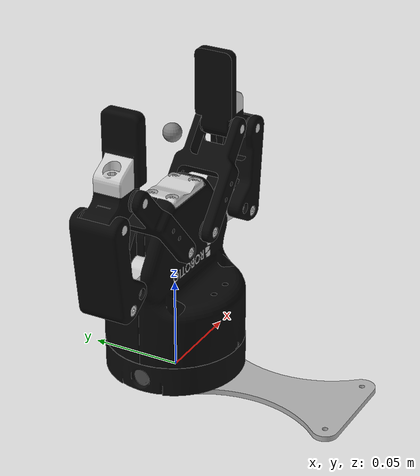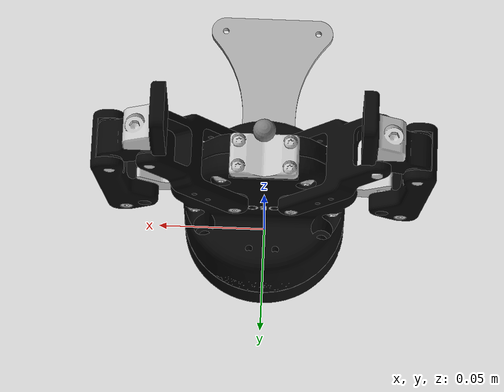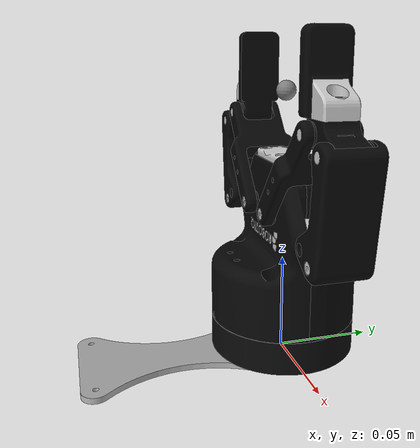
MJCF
<!--
  Robotiq 85 二指夹爪 MJCF
  包含 1 个驱动关节: robotiq_85_left_knuckle_joint (position actuator)
  右侧通过 tendon coupling 联动
-->
<mujoco model="robotiq_85_gripper">
  <compiler angle="radian" meshdir="meshes" autolimits="true"/>

  <default>
    <default class="gripper">
      <default class="visual">
        <geom contype="0" conaffinity="0" group="2"/>
      </default>
      <default class="collision">
        <geom contype="1" conaffinity="1" group="3" condim="4"/>
      </default>
    </default>
  </default>

  <asset>
    <!-- Shelf / adapter -->
    <mesh name="MESH_RealSense_D435_Shelf_d359ca29" file="RealSense_D435_Shelf_d359ca29.STL"/>
    <mesh name="MESH_ur_to_robotiq_adapter_c1f8affd" file="ur_to_robotiq_adapter_c1f8affd.stl"/>
    <mesh name="MESH_ur_to_robotiq_adapter_e07b68cf_0" file="ur_to_robotiq_adapter_e07b68cf_0.obj"/>
    <mesh name="MESH_ur_to_robotiq_adapter_e07b68cf_1" file="ur_to_robotiq_adapter_e07b68cf_1.obj"/>
    <!-- Base -->
    <mesh name="MESH_robotiq_base_e14b1363" file="robotiq_base_e14b1363.stl"/>
    <mesh name="MESH_robotiq_base_ba4c22e7_0" file="robotiq_base_ba4c22e7_0.obj"/>
    <mesh name="MESH_robotiq_base_ba4c22e7_1" file="robotiq_base_ba4c22e7_1.obj"/>
    <!-- Left finger -->
    <mesh name="MESH_left_knuckle_51d3a21e" file="left_knuckle_51d3a21e.stl"/>
    <mesh name="MESH_left_knuckle_ac6d7519_0" file="left_knuckle_ac6d7519_0.obj"/>
    <mesh name="MESH_left_finger_1b48fede" file="left_finger_1b48fede.stl"/>
    <mesh name="MESH_left_finger_e1ea88f9_0" file="left_finger_e1ea88f9_0.obj"/>
    <mesh name="MESH_left_finger_e1ea88f9_1" file="left_finger_e1ea88f9_1.obj"/>
    <mesh name="MESH_left_finger_tip_c9609174" file="left_finger_tip_c9609174.stl"/>
    <mesh name="MESH_left_finger_tip_4c918411_0" file="left_finger_tip_4c918411_0.obj"/>
    <mesh name="MESH_left_finger_tip_4c918411_1" file="left_finger_tip_4c918411_1.obj"/>
    <!-- Right finger -->
    <mesh name="MESH_right_knuckle_8dc62fad" file="right_knuckle_8dc62fad.stl"/>
    <mesh name="MESH_right_knuckle_922d025b_0" file="right_knuckle_922d025b_0.obj"/>
    <mesh name="MESH_right_finger_df3e86a5" file="right_finger_df3e86a5.stl"/>
    <mesh name="MESH_right_finger_12094dbb_0" file="right_finger_12094dbb_0.obj"/>
    <mesh name="MESH_right_finger_12094dbb_1" file="right_finger_12094dbb_1.obj"/>
    <mesh name="MESH_right_finger_tip_8abbbc6d" file="right_finger_tip_8abbbc6d.stl"/>
    <mesh name="MESH_right_finger_tip_5aafdc4f_0" file="right_finger_tip_5aafdc4f_0.obj"/>
    <mesh name="MESH_right_finger_tip_5aafdc4f_1" file="right_finger_tip_5aafdc4f_1.obj"/>
    <!-- Inner knuckles -->
    <mesh name="MESH_left_inner_knuckle_11ecd5a1" file="left_inner_knuckle_11ecd5a1.stl"/>
    <mesh name="MESH_left_inner_knuckle_d6e20ced_0" file="left_inner_knuckle_d6e20ced_0.obj"/>
    <mesh name="MESH_left_inner_knuckle_d6e20ced_1" file="left_inner_knuckle_d6e20ced_1.obj"/>
    <mesh name="MESH_right_inner_knuckle_2c3a72a4" file="right_inner_knuckle_2c3a72a4.stl"/>
    <mesh name="MESH_right_inner_knuckle_8d05a49d_0" file="right_inner_knuckle_8d05a49d_0.obj"/>
    <mesh name="MESH_right_inner_knuckle_8d05a49d_1" file="right_inner_knuckle_8d05a49d_1.obj"/>
  </asset>

  <worldbody>
    <body name="realsense_shelf" pos="0 0 0" quat="6.123233995736766e-17 0 0 1">
      <inertial mass="0.038" diaginertia="6.673e-05 8.5e-06 7.517e-05" pos="0.0 0.044 0.0015" quat="1 0 0 0"/>
      <geom class="collision" name="COLLISION_realsense_shelf_0" type="mesh" mesh="MESH_RealSense_D435_Shelf_d359ca29" pos="0 0 0" quat="1 0 0 0"/>
      <geom class="visual" name="VISUAL_realsense_shelf_0" type="mesh" mesh="MESH_RealSense_D435_Shelf_d359ca29" rgba="0.7 0.7 0.7 1" pos="0 0 0" quat="1 0 0 0"/>

      <body name="realsense_shelf_child_side" pos="0 0 0.006" quat="1 0 0 0">
        <body name="robotiq_ur_to_robotiq_link" pos="0 0 0" quat="1 0 0 0">
          <inertial mass="0.01" diaginertia="4.4e-05 2.7e-05 2.7e-05" pos="0 0 0" quat="1 0 0 0"/>
          <geom class="collision" name="COLLISION_robotiq_ur_to_robotiq_link_0" type="mesh" mesh="MESH_ur_to_robotiq_adapter_c1f8affd" pos="0 0 0" quat="1 0 0 0"/>
          <geom class="visual" name="VISUAL_robotiq_ur_to_robotiq_link_0" type="mesh" mesh="MESH_ur_to_robotiq_adapter_e07b68cf_0" rgba="0.039 0.039 0.039 1" pos="0 0 0" quat="1 0 0 0"/>
          <geom class="visual" name="VISUAL_robotiq_ur_to_robotiq_link_1" type="mesh" mesh="MESH_ur_to_robotiq_adapter_e07b68cf_1" rgba="0.298 0.298 0.298 1" pos="0 0 0" quat="1 0 0 0"/>

          <body name="robotiq_ur_to_g2f85_child_side" pos="0 0 0.011" quat="1 0 0 0">
            <body name="robotiq_85_base_link" pos="0 0 0" quat="1 0 0 0">
              <inertial mass="0.66320197" diaginertia="0.00039462722067250294 0.0005161781480017798 0.0005880226313257172" pos="0.0 2.274e-05 0.03232288" quat="0.5005192813628906 -0.49947997687615325 0.49968467889977636 -0.5003153239274212"/>
              <geom class="collision" name="COLLISION_robotiq_85_base_link_0" type="mesh" mesh="MESH_robotiq_base_e14b1363" pos="0 0 0" quat="1 0 0 0"/>
              <geom class="visual" name="VISUAL_robotiq_85_base_link_0" type="mesh" mesh="MESH_robotiq_base_ba4c22e7_0" rgba="0.031 0.031 0.031 1" pos="0 0 0" quat="1 0 0 0"/>
              <geom class="visual" name="VISUAL_robotiq_85_base_link_1" type="mesh" mesh="MESH_robotiq_base_ba4c22e7_1" rgba="0.8 0.8 0.8 1" pos="0 0 0" quat="1 0 0 0"/>

              <!-- Left finger chain -->
              <body name="robotiq_85_left_knuckle_link" pos="0.03060114 0 0.05490452" quat="1 0 0 0">
                <inertial mass="0.01384773208" diaginertia="3.4500845003981836e-07 2.238671549960182e-06 2.31944e-06" pos="0.01213197 0.0002 -0.00058647" quat="0.7067650957173783 -0.706765095717382 -0.02197952400764002 0.021979524007640125"/>
                <joint name="robotiq_85_left_knuckle_joint" type="hinge" axis="0 -1 0" range="0.0 0.8"/>
                <geom class="collision" name="COLLISION_robotiq_85_left_knuckle_link_0" type="mesh" mesh="MESH_left_knuckle_51d3a21e" pos="0 0 0" quat="1 0 0 0"/>
                <geom class="visual" name="VISUAL_robotiq_85_left_knuckle_link_0" type="mesh" mesh="MESH_left_knuckle_ac6d7519_0" rgba="0.8 0.8 0.8 1" pos="0 0 0" quat="1 0 0 0"/>

                <body name="robotiq_85_left_finger_link" pos="0.03152616 0 -0.00376347" quat="1 0 0 0">
                  <inertial mass="0.04260376752" diaginertia="4.6822750126340444e-06 1.183208e-05 1.4372364987365957e-05" pos="0.00346899 -0.00079447 0.01867121" quat="0.620317559743575 0 -0.7843507666049523 0"/>
                  <geom class="collision" name="COLLISION_robotiq_85_left_finger_link_0" type="mesh" mesh="MESH_left_finger_1b48fede" pos="0 0 0" quat="1 0 0 0"/>
                  <geom class="visual" name="VISUAL_robotiq_85_left_finger_link_0" type="mesh" mesh="MESH_left_finger_e1ea88f9_0" rgba="0.8 0.8 0.8 1" pos="0 0 0" quat="1 0 0 0"/>
                  <geom class="visual" name="VISUAL_robotiq_85_left_finger_link_1" type="mesh" mesh="MESH_left_finger_e1ea88f9_1" rgba="0.031 0.031 0.031 1" pos="0 0 0" quat="1 0 0 0"/>

                  <body name="robotiq_85_left_finger_tip_link" pos="0.00563134 0 0.04718515" quat="1 0 0 0">
                    <inertial mass="0.04268588744" diaginertia="2.6440466428387786e-06 1.197888e-05 1.206531335716122e-05" pos="-0.01456706 -0.0008 0.01649701" quat="0.0 0.5431343521286145 0.0 0.8396458036206875"/>
                    <joint name="robotiq_85_left_finger_tip_joint" type="hinge" axis="0 -1 0"/>
                    <geom class="collision" name="COLLISION_robotiq_85_left_finger_tip_link_0" type="mesh" mesh="MESH_left_finger_tip_c9609174" pos="0 0 0" quat="1 0 0 0"
                      margin="0.001" solmix="10" solref="-3000 -500" solimp="0.95 0.99 0.001 0.5 2" priority="10" friction="5 5 0.02"/>
                    <geom class="visual" name="VISUAL_robotiq_85_left_finger_tip_link_0" type="mesh" mesh="MESH_left_finger_tip_4c918411_0" rgba="0.031 0.031 0.031 1" pos="0 0 0" quat="1 0 0 0"/>
                    <geom class="visual" name="VISUAL_robotiq_85_left_finger_tip_link_1" type="mesh" mesh="MESH_left_finger_tip_4c918411_1" rgba="0.8 0.8 0.8 1" pos="0 0 0" quat="1 0 0 0"/>
                  </body>
                </body>
              </body>

              <!-- Right finger chain -->
              <body name="robotiq_85_right_knuckle_link" pos="-0.03060114 0 0.05490452" quat="1 0 0 0">
                <inertial mass="0.01384773208" diaginertia="3.4500845003981836e-07 2.238671549960182e-06 2.31944e-06" pos="-0.01213197 0.0002 -0.00058647" quat="0.7067650957173783 0.706765095717382 0.02197952400764002 0.021979524007640125"/>
                <joint name="robotiq_85_right_knuckle_joint" type="hinge" axis="0 -1 0" range="-0.8 0.0"/>
                <geom class="collision" name="COLLISION_robotiq_85_right_knuckle_link_0" type="mesh" mesh="MESH_right_knuckle_8dc62fad" pos="0 0 0" quat="1 0 0 0"/>
                <geom class="visual" name="VISUAL_robotiq_85_right_knuckle_link_0" type="mesh" mesh="MESH_right_knuckle_922d025b_0" rgba="0.8 0.8 0.8 1" pos="0 0 0" quat="1 0 0 0"/>

                <body name="robotiq_85_right_finger_link" pos="-0.03152616 0 -0.00376347" quat="1 0 0 0">
                  <inertial mass="0.04260376752" diaginertia="4.6822750126340444e-06 1.183208e-05 1.4372364987365957e-05" pos="-0.00346899 -5.53e-06 0.01867121" quat="0 0.620317559743575 0 0.7843507666049523"/>
                  <geom class="collision" name="COLLISION_robotiq_85_right_finger_link_0" type="mesh" mesh="MESH_right_finger_df3e86a5" pos="0 0 0" quat="1 0 0 0"/>
                  <geom class="visual" name="VISUAL_robotiq_85_right_finger_link_0" type="mesh" mesh="MESH_right_finger_12094dbb_0" rgba="0.8 0.8 0.8 1" pos="0 0 0" quat="1 0 0 0"/>
                  <geom class="visual" name="VISUAL_robotiq_85_right_finger_link_1" type="mesh" mesh="MESH_right_finger_12094dbb_1" rgba="0.031 0.031 0.031 1" pos="0 0 0" quat="1 0 0 0"/>

                  <body name="robotiq_85_right_finger_tip_link" pos="-0.00563134 0 0.04718515" quat="1 0 0 0">
                    <inertial mass="0.04268588744" diaginertia="2.6440466428387786e-06 1.197888e-05 1.206531335716122e-05" pos="0.01456706 5e-05 0.01649701" quat="0.5431343521286145 0 -0.8396458036206876 0"/>
                    <joint name="robotiq_85_right_finger_tip_joint" type="hinge" axis="0 -1 0"/>
                    <geom class="collision" name="COLLISION_robotiq_85_right_finger_tip_link_0" type="mesh" mesh="MESH_right_finger_tip_8abbbc6d" pos="0 0 0" quat="1 0 0 0"
                      margin="0.001" solmix="10" solref="-3000 -500" solimp="0.95 0.99 0.001 0.5 2" priority="10" friction="5 5 0.02"/>
                    <geom class="visual" name="VISUAL_robotiq_85_right_finger_tip_link_0" type="mesh" mesh="MESH_right_finger_tip_5aafdc4f_0" rgba="0.031 0.031 0.031 1" pos="0 0 0" quat="1 0 0 0"/>
                    <geom class="visual" name="VISUAL_robotiq_85_right_finger_tip_link_1" type="mesh" mesh="MESH_right_finger_tip_5aafdc4f_1" rgba="0.8 0.8 0.8 1" pos="0 0 0" quat="1 0 0 0"/>
                  </body>
                </body>
              </body>

              <!-- Inner knuckles (passive) -->
              <body name="robotiq_85_left_inner_knuckle_link" pos="0.0127 0 0.06142" quat="1 0 0 0">
                <inertial mass="0.02969376448" diaginertia="4.887117939453948e-06 8.69056e-06 1.287568206054605e-05" pos="0.01897699 0.00015001 0.02247101" quat="0.42240861350400083 0 -0.9064055180975167 0"/>
                <joint name="robotiq_85_left_inner_knuckle_joint" type="hinge" axis="0 -1 0"/>
                <geom class="collision" name="COLLISION_robotiq_85_left_inner_knuckle_link_0" type="mesh" mesh="MESH_left_inner_knuckle_11ecd5a1" pos="0 0 0" quat="1 0 0 0"/>
                <geom class="visual" name="VISUAL_robotiq_85_left_inner_knuckle_link_0" type="mesh" mesh="MESH_left_inner_knuckle_d6e20ced_0" rgba="0.031 0.031 0.031 1" pos="0 0 0" quat="1 0 0 0"/>
                <geom class="visual" name="VISUAL_robotiq_85_left_inner_knuckle_link_1" type="mesh" mesh="MESH_left_inner_knuckle_d6e20ced_1" rgba="0.8 0.8 0.8 1" pos="0 0 0" quat="1 0 0 0"/>
              </body>

              <body name="robotiq_85_right_inner_knuckle_link" pos="-0.0127 0 0.06142" quat="1 0 0 0">
                <inertial mass="0.02969376448" diaginertia="4.880756583548092e-06 8.69056e-06 1.288204341645191e-05" pos="-0.01926824 5.001e-05 0.02222178" quat="0 0.41391107378742875 0 0.9103173199473564"/>
                <joint name="robotiq_85_right_inner_knuckle_joint" type="hinge" axis="0 -1 0"/>
                <geom class="collision" name="COLLISION_robotiq_85_right_inner_knuckle_link_0" type="mesh" mesh="MESH_right_inner_knuckle_2c3a72a4" pos="0 0 0" quat="1 0 0 0"/>
                <geom class="visual" name="VISUAL_robotiq_85_right_inner_knuckle_link_0" type="mesh" mesh="MESH_right_inner_knuckle_8d05a49d_0" rgba="0.031 0.031 0.031 1" pos="0 0 0" quat="1 0 0 0"/>
                <geom class="visual" name="VISUAL_robotiq_85_right_inner_knuckle_link_1" type="mesh" mesh="MESH_right_inner_knuckle_8d05a49d_1" rgba="0.8 0.8 0.8 1" pos="0 0 0" quat="1 0 0 0"/>
              </body>

              <!-- TCP at fingertip center -->
              <body name="_tcp" pos="0 0 0.12" quat="1 0 0 0">
                <site name="_tcp"/>
              </body>
            </body>
          </body>
        </body>
      </body>
    </body>
  </worldbody>

  <tendon>
    <fixed name="robotiq_knuckle_tendon">
      <joint joint="robotiq_85_left_knuckle_joint" coef="0.5"/>
      <joint joint="robotiq_85_right_knuckle_joint" coef="-0.5"/>
    </fixed>
  </tendon>

  <contact>
    <exclude body1="robotiq_85_base_link" body2="robotiq_85_left_knuckle_link"/>
    <exclude body1="robotiq_85_base_link" body2="robotiq_85_right_knuckle_link"/>
    <exclude body1="robotiq_85_base_link" body2="robotiq_85_left_inner_knuckle_link"/>
    <exclude body1="robotiq_85_base_link" body2="robotiq_85_right_inner_knuckle_link"/>
    <exclude body1="robotiq_85_left_finger_link" body2="robotiq_85_left_finger_tip_link"/>
    <exclude body1="robotiq_85_right_finger_link" body2="robotiq_85_right_finger_tip_link"/>
    <exclude body1="robotiq_85_left_finger_tip_link" body2="robotiq_85_left_inner_knuckle_link"/>
    <exclude body1="robotiq_85_right_finger_tip_link" body2="robotiq_85_right_inner_knuckle_link"/>
  </contact>

  <actuator>
    <position name="robotiq_85_left_knuckle_joint_ACTUATOR" joint="robotiq_85_left_knuckle_joint" kp="10" dampratio="1.0" ctrlrange="0.0 0.7929"/>
  </actuator>

  <equality>
    <connect anchor="-0.018 0 0.0065" body1="robotiq_85_left_finger_tip_link" body2="robotiq_85_left_inner_knuckle_link" solimp="0.95 0.99 0.001" solref="0.005 1"/>
    <connect anchor="0.018 0 0.0065" body1="robotiq_85_right_finger_tip_link" body2="robotiq_85_right_inner_knuckle_link" solimp="0.95 0.99 0.001" solref="0.005 1"/>
    <joint joint1="robotiq_85_left_knuckle_joint" joint2="robotiq_85_right_knuckle_joint" polycoef="0.0 -1.0 0.0 0.0 0.0"/>
  </equality>
</mujoco>
